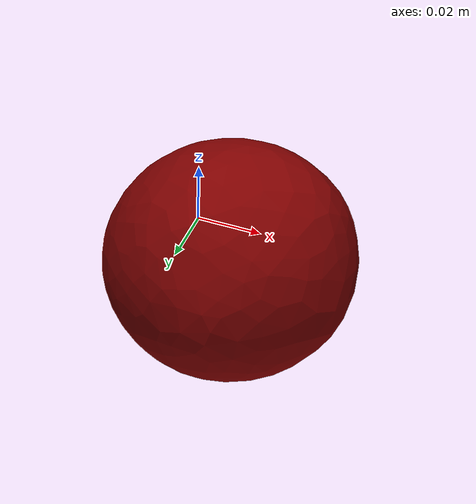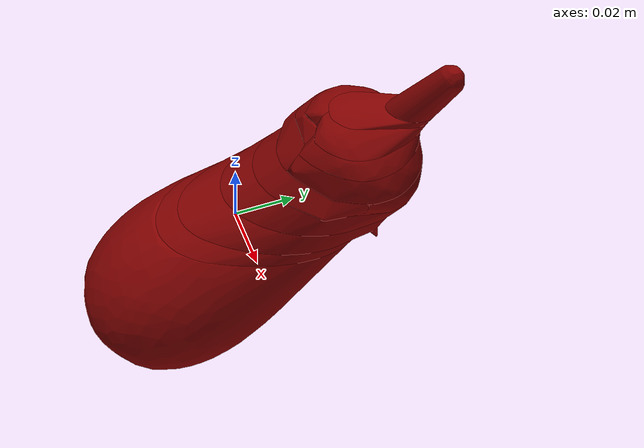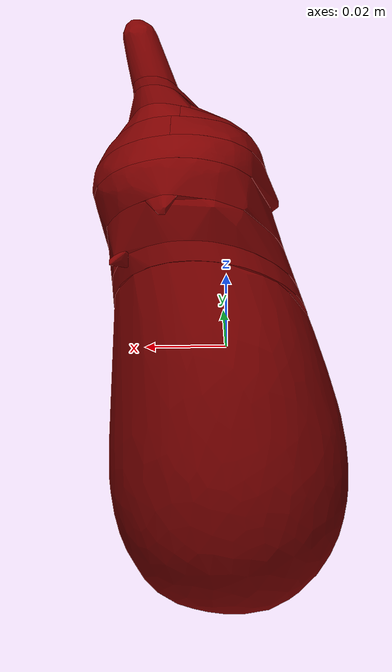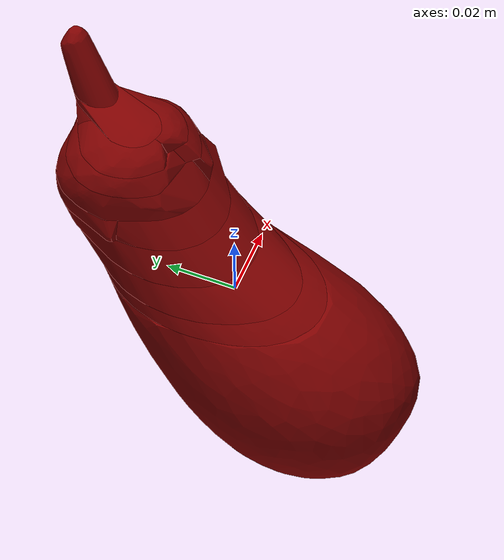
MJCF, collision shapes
<?xml version='1.0' encoding='utf-8'?>
<mujoco model="eggplant_6">
  <asset>
    <mesh file="visual/model_normalized_0.obj" name="model_normalized_0_vis" scale="0.11999999999999994 0.11999999999999994 0.11999999999999994" refquat="-1.1102230246251565e-16 0.0 0.0 1.0" />
    <mesh file="visual/model_normalized_1.obj" name="model_normalized_1_vis" scale="0.11999999999999994 0.11999999999999994 0.11999999999999994" refquat="-1.1102230246251565e-16 0.0 0.0 1.0" />
    <material name="bodyColor" specular="0.5" shininess="1.4690999999999999e-05" rgba="0.065967 0.002710 0.040519 1.0" />
    <material name="material" specular="0.5" shininess="0.0" rgba="0.189218 0.478575 0.000000 1.0" />
    <mesh file="collision/collision_mesh_collision_0.obj" name="eggplant_collision_mesh_0" scale="0.11999999999999994 0.11999999999999994 0.11999999999999994" refquat="-1.1102230246251565e-16 0.0 0.0 1.0" />
    <mesh file="collision/collision_mesh_collision_1.obj" name="eggplant_collision_mesh_1" scale="0.11999999999999994 0.11999999999999994 0.11999999999999994" refquat="-1.1102230246251565e-16 0.0 0.0 1.0" />
    <mesh file="collision/collision_mesh_collision_2.obj" name="eggplant_collision_mesh_2" scale="0.11999999999999994 0.11999999999999994 0.11999999999999994" refquat="-1.1102230246251565e-16 0.0 0.0 1.0" />
    <mesh file="collision/collision_mesh_collision_3.obj" name="eggplant_collision_mesh_3" scale="0.11999999999999994 0.11999999999999994 0.11999999999999994" refquat="-1.1102230246251565e-16 0.0 0.0 1.0" />
    <mesh file="collision/collision_mesh_collision_4.obj" name="eggplant_collision_mesh_4" scale="0.11999999999999994 0.11999999999999994 0.11999999999999994" refquat="-1.1102230246251565e-16 0.0 0.0 1.0" />
    <mesh file="collision/collision_mesh_collision_5.obj" name="eggplant_collision_mesh_5" scale="0.11999999999999994 0.11999999999999994 0.11999999999999994" refquat="-1.1102230246251565e-16 0.0 0.0 1.0" />
    <mesh file="collision/collision_mesh_collision_6.obj" name="eggplant_collision_mesh_6" scale="0.11999999999999994 0.11999999999999994 0.11999999999999994" refquat="-1.1102230246251565e-16 0.0 0.0 1.0" />
    <mesh file="collision/collision_mesh_collision_7.obj" name="eggplant_collision_mesh_7" scale="0.11999999999999994 0.11999999999999994 0.11999999999999994" refquat="-1.1102230246251565e-16 0.0 0.0 1.0" />
    <mesh file="collision/collision_mesh_collision_8.obj" name="eggplant_collision_mesh_8" scale="0.11999999999999994 0.11999999999999994 0.11999999999999994" refquat="-1.1102230246251565e-16 0.0 0.0 1.0" />
    <mesh file="collision/collision_mesh_collision_9.obj" name="eggplant_collision_mesh_9" scale="0.11999999999999994 0.11999999999999994 0.11999999999999994" refquat="-1.1102230246251565e-16 0.0 0.0 1.0" />
    <mesh file="collision/collision_mesh_collision_10.obj" name="eggplant_collision_mesh_10" scale="0.11999999999999994 0.11999999999999994 0.11999999999999994" refquat="-1.1102230246251565e-16 0.0 0.0 1.0" />
    <mesh file="collision/collision_mesh_collision_11.obj" name="eggplant_collision_mesh_11" scale="0.11999999999999994 0.11999999999999994 0.11999999999999994" refquat="-1.1102230246251565e-16 0.0 0.0 1.0" />
    <mesh file="collision/collision_mesh_collision_12.obj" name="eggplant_collision_mesh_12" scale="0.11999999999999994 0.11999999999999994 0.11999999999999994" refquat="-1.1102230246251565e-16 0.0 0.0 1.0" />
    <mesh file="collision/collision_mesh_collision_13.obj" name="eggplant_collision_mesh_13" scale="0.11999999999999994 0.11999999999999994 0.11999999999999994" refquat="-1.1102230246251565e-16 0.0 0.0 1.0" />
    <mesh file="collision/collision_mesh_collision_14.obj" name="eggplant_collision_mesh_14" scale="0.11999999999999994 0.11999999999999994 0.11999999999999994" refquat="-1.1102230246251565e-16 0.0 0.0 1.0" />
    <mesh file="collision/collision_mesh_collision_15.obj" name="eggplant_collision_mesh_15" scale="0.11999999999999994 0.11999999999999994 0.11999999999999994" refquat="-1.1102230246251565e-16 0.0 0.0 1.0" />
    </asset>
  <default>
    <default class="region">
      <geom group="1" conaffinity="0" contype="0" rgba="0 1 0 0" />
      </default>
    <default class="collision">
      <geom group="0" rgba="0.5 0 0 0.5" density="1000.0" />
      </default>
    </default>
  <worldbody>
    <body>
      <body name="object">
        <geom solimp="0.998 0.998 0.001" solref="0.001 1" density="100" friction="0.95 0.3 0.1" type="mesh" mesh="model_normalized_0_vis" conaffinity="0" contype="0" group="1" material="material" />
        <geom solimp="0.998 0.998 0.001" solref="0.001 1" density="100" friction="0.95 0.3 0.1" type="mesh" mesh="model_normalized_1_vis" conaffinity="0" contype="0" group="1" material="bodyColor" />
        <geom class="region" name="reg_bbox" type="box" pos="-0.00023080017248646988 -0.00011214838663087029 0.00033491100000000024" size="0.028929651751316347 0.05268982411888272 0.05925460619999997" />
        <geom mesh="eggplant_collision_mesh_0" type="mesh" class="collision" />
        <geom mesh="eggplant_collision_mesh_1" type="mesh" class="collision" />
        <geom mesh="eggplant_collision_mesh_2" type="mesh" class="collision" />
        <geom mesh="eggplant_collision_mesh_3" type="mesh" class="collision" />
        <geom mesh="eggplant_collision_mesh_4" type="mesh" class="collision" />
        <geom mesh="eggplant_collision_mesh_5" type="mesh" class="collision" />
        <geom mesh="eggplant_collision_mesh_6" type="mesh" class="collision" />
        <geom mesh="eggplant_collision_mesh_7" type="mesh" class="collision" />
        <geom mesh="eggplant_collision_mesh_8" type="mesh" class="collision" />
        <geom mesh="eggplant_collision_mesh_9" type="mesh" class="collision" />
        <geom mesh="eggplant_collision_mesh_10" type="mesh" class="collision" />
        <geom mesh="eggplant_collision_mesh_11" type="mesh" class="collision" />
        <geom mesh="eggplant_collision_mesh_12" type="mesh" class="collision" />
        <geom mesh="eggplant_collision_mesh_13" type="mesh" class="collision" />
        <geom mesh="eggplant_collision_mesh_14" type="mesh" class="collision" />
        <geom mesh="eggplant_collision_mesh_15" type="mesh" class="collision" />
        </body>
      <site rgba="0 0 0 0" size="0.005" pos="0 0 -0.058919695" name="bottom_site" /><site rgba="0 0 0 0" size="0.005" pos="0 0 0.059589517" name="top_site" /><site rgba="0 0 0 0" size="0.005" pos="0.052801973 0.052801973 0" name="horizontal_radius_site" /></body>
    </worldbody>
  </mujoco>
